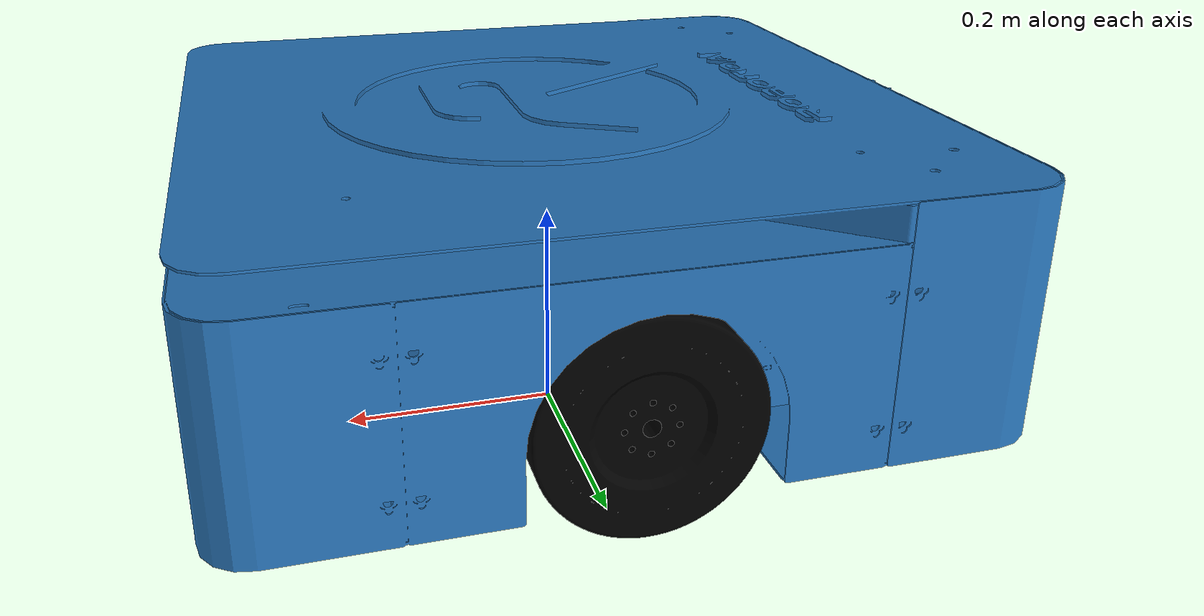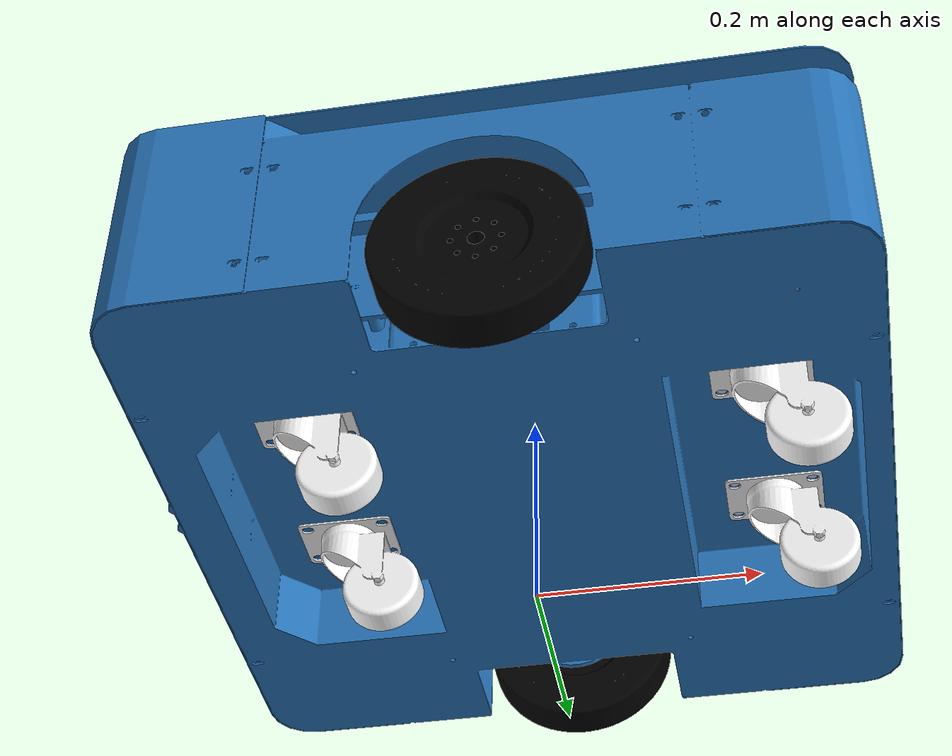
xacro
<?xml version="1.0"?>
<!-- Basic differential drive mobile base -->
<robot xmlns:xacro="http://www.ros.org/wiki/xacro" name="dynominion_rmf">

  <xacro:arg name="robot_name" default="dynominion1" />
  <xacro:property name="robot_name" value="$(arg robot_name)" />

  <xacro:include filename="$(find dynominion_rmf_description)/urdf/dynominion_rmf_description.urdf.xacro" />

  <!-- Import Rviz colors -->
  <xacro:include filename="$(find dynominion_rmf_description)/urdf/dynominion_rmf.materials.xacro" />

  <!-- Import dumbot ros2_control description -->
  <xacro:include filename="$(find dynominion_rmf_gazebo)/urdf/gazebo_ros2_control.xacro" />

  <xacro:include filename="$(find dynominion_rmf_gazebo)/urdf/gazebo_sensor_plugin.xacro" />

  <xacro:dynominion_rmf_base />

  <xacro:dynominion_rmf_ros2_control
    name="ros2_diff_drive" />

</robot>

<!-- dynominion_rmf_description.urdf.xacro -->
<robot xmlns:xacro="http://www.ros.org/wiki/xacro">

  <xacro:arg name="robot_name" default="dynominion1" />
  <xacro:property name="robot_name" value="$(arg robot_name)" />

  <xacro:macro name="dynominion_rmf_base">

  <xacro:macro name="visual_collision" params="stl material">
      <visual>
        <origin
          xyz="0 0 0"
          rpy="0 0 0" />
        <geometry>
          <mesh
            filename="file://$(find dynominion_rmf_description)/meshes/${stl}" />
        </geometry>
        <material
          name="${material}"/>
      </visual>
      <collision>
        <origin
          xyz="0 0 0"
          rpy="0 0 0" />
        <geometry>
          <mesh
            filename="file://$(find dynominion_rmf_description)/meshes/${stl}" />
        </geometry>
      </collision>
  </xacro:macro>

  <link name="base_footprint" />

  <joint name="base_joint" type="fixed">
    <parent link="base_footprint"/>
    <child link="base_link"/>
    <origin xyz="0 0 0.0925" rpy="0 0 0"/>
  </joint>

  <link name="base_link">
    <inertial>
      <origin
        xyz="-0.0012031 -0.00067857 0.11523"
        rpy="0 0 0" />
      <mass
        value="38.194" />
      <inertia
        ixx="0.92708"
        ixy="0.00025177"
        ixz="5.5591E-05"
        iyy="0.68737"
        iyz="3.0979E-06"
        izz="1.5405" />
    </inertial>
    <xacro:visual_collision stl="base_link.STL" material="base_link"/>
  </link>

  <joint name="left_wheel_joint" type="continuous">
    <origin
      xyz="0 0.306 0.0500"
      rpy="0 0 0" />
    <parent
      link="base_link" />
    <child
      link="left_wheel" />
    <axis
      xyz="0 1 0" />
    <dynamics damping="0.3"/>
  </joint>

  <link name="left_wheel">
    <inertial>
      <origin
        xyz="-6.8084E-18 -0.0145 2.0817E-17"
        rpy="0 0 0" />
      <mass
        value="2.6657" />
      <inertia
        ixx="0.0063899"
        ixy="3.4604E-19"
        ixz="2.4937E-19"
        iyy="0.012138"
        iyz="-2.6948E-19"
        izz="0.0063899" />
    </inertial>
    <xacro:visual_collision stl="left_wheel_l2.STL" material="wheel"/>
  </link>

  <joint name="right_wheel_joint" type="continuous">
    <origin
      xyz="0 -0.306 0.0500"
      rpy="0 0 0" />
    <parent
      link="base_link" />
    <child
      link="right_wheel" />
    <axis
      xyz="0 1 0" />
    <dynamics damping="0.3"/>
  </joint>

  <link name="right_wheel">
    <inertial>
      <origin
        xyz="-1.3266E-15 0.0145 1.8319E-15"
        rpy="0 0 0" />
      <mass
        value="2.6657" />
      <inertia
        ixx="0.0063899"
        ixy="1.0787E-18"
        ixz="-6.3978E-19"
        iyy="0.012138"
        iyz="1.1621E-18"
        izz="0.0063899" />
    </inertial>
    <xacro:visual_collision stl="right_wheel_l1.STL" material="wheel"/>
  </link>

  <link name="laser">
    <inertial>
      <origin
        xyz="-0.00041464 -8.5349E-05 -0.017667"
        rpy="0 0 0" />
      <mass
        value="0.035797" />
      <inertia
        ixx="1.2463E-05"
        ixy="-2.4586E-09"
        ixz="1.6242E-08"
        iyy="1.2418E-05"
        iyz="-4.2084E-09"
        izz="2.2872E-05" />
    </inertial>
    <xacro:visual_collision stl="lidar_l3.STL" material="lidar"/>
  </link>

  <joint name="laser_joint" type="fixed">
    <origin
      xyz="0.24971 0 0.1932"
      rpy="0 0 3.1415926535897931" />
    <parent
      link="base_link" />
    <child
      link="laser" />
    <axis
      xyz="0 0 0" />
  </joint>

  <link name="imu_link">
    <inertial>
      <origin
        xyz="-0.092447 -0.001269 -0.012304"
        rpy="0 0 0" />
      <mass
        value="0.40139" />
      <inertia
        ixx="0.0041061"
        ixy="3.6427E-06"
        ixz="-7.2802E-06"
        iyy="0.0018697"
        iyz="-9.9936E-08"
        izz="0.0059728" />
    </inertial>
    <xacro:visual_collision stl="imu_l4.STL" material="imu"/>
  </link>

  <joint name="imu_joint" type="fixed">
    <origin
      xyz="0.2785 0 0.101"
      rpy="0 0 0" />
    <parent
      link="base_link" />
    <child
      link="imu_link" />
    <axis
      xyz="0 0 0" />
  </joint>

  <link name="gps"/>

  <joint name="gps_joint" type="fixed">
    <origin
      xyz="0.275 0 0.230"
      rpy="0 0 0" />
    <parent
      link="base_link" />
    <child
      link="gps" />
    <axis
      xyz="0 0 0" />
  </joint>

  <link
    name="castor_1">
    <inertial>
      <origin
        xyz="0.0276 -2.6305E-10 -0.050548"
        rpy="0 0 0" />
      <mass
        value="0.1915" />
      <inertia
        ixx="7.6816E-05"
        ixy="-1.6051E-11"
        ixz="1.5845E-06"
        iyy="0.00011695"
        iyz="1.2642E-11"
        izz="9.0525E-05" />
    </inertial>
    <xacro:visual_collision stl="castor_1.STL" material="caster"/>
  </link>

  <joint name="castor1_joint" type="fixed">
    <origin
      xyz="0.218 -0.09 0.0624"
      rpy="0 0 0" />
    <parent
      link="base_link" />
    <child
      link="castor_1" />
    <axis
      xyz="0 0 0" />
  </joint>

  <link
    name="castor_2">
    <inertial>
      <origin
        xyz="0.0276 -2.6305E-10 -0.050548"
        rpy="0 0 0" />
      <mass
        value="0.1915" />
      <inertia
        ixx="7.6816E-05"
        ixy="-1.6051E-11"
        ixz="1.5845E-06"
        iyy="0.00011695"
        iyz="1.2642E-11"
        izz="9.0525E-05" />
    </inertial>
    <xacro:visual_collision stl="castor_2.STL" material="caster"/>
  </link>

  <joint name="castor2_joint" type="fixed">
    <origin
      xyz="0.218 0.09 0.0624"
      rpy="0 0 0" />
    <parent
      link="base_link" />
    <child
      link="castor_2" />
    <axis
      xyz="0 0 0" />
  </joint>

  <link name="castor_3">
    <inertial>
      <origin
        xyz="0.0276 -2.6305E-10 -0.050548"
        rpy="0 0 0" />
      <mass
        value="0.1915" />
      <inertia
        ixx="7.6816E-05"
        ixy="-1.6051E-11"
        ixz="1.5845E-06"
        iyy="0.00011695"
        iyz="1.2642E-11"
        izz="9.0525E-05" />
    </inertial>
    <xacro:visual_collision stl="castor_3.STL" material="caster"/>
  </link>

  <joint name="castor3_joint" type="fixed">
    <origin
      xyz="-0.2 -0.09 0.0624"
      rpy="0 0 0" />
    <parent
      link="base_link" />
    <child
      link="castor_3" />
    <axis
      xyz="0 0 0" />
  </joint>

  <link
    name="castor_4">
    <inertial>
      <origin
        xyz="0.0276 -2.6305E-10 -0.050548"
        rpy="0 0 0" />
      <mass
        value="0.1915" />
      <inertia
        ixx="7.6816E-05"
        ixy="-1.6051E-11"
        ixz="1.5845E-06"
        iyy="0.00011695"
        iyz="1.2642E-11"
        izz="9.0525E-05" />
    </inertial>
    <xacro:visual_collision stl="castor_4.STL" material="caster"/>
  </link>

  <joint
    name="castor4_joint"
    type="fixed">
    <origin
      xyz="-0.2 0.09 0.0624"
      rpy="0 0 0" />
    <parent
      link="base_link" />
    <child
      link="castor_4" />
    <axis
      xyz="0 0 0" />
  </joint>

  </xacro:macro>

</robot>

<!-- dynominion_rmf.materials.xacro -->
<!--
Copied from ROS1 example:
https://github.com/ros-simulation/gazebo_ros_demos/blob/kinetic-devel/rrbot_description/urdf/materials.xacro
-->
<robot>

  <material name="base_link">
    <color rgba="0.1607843137254902 0.4627450980392157 0.7333333333333333 1.0" />
  </material>

  <material name="wheel">
    <color rgba="0 0 0 1.0"/>
  </material>

  <material name="lidar">
    <color rgba="0.4 0.4 0.4 1.0"/>
  </material>

  <material name="imu">
    <color rgba="0.79216 0.81961 0.93333 1.0"/>
  </material>

  <material name="caster">
    <color rgba="1 1 1 1" />
  </material>

</robot>
